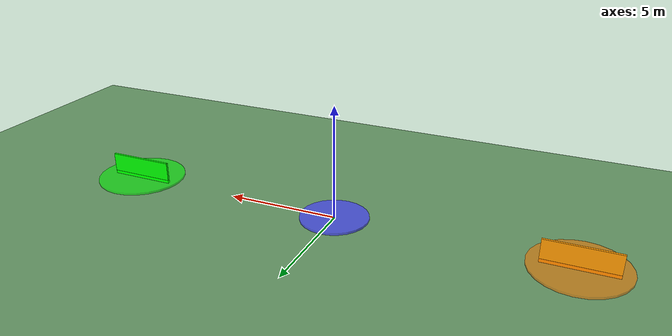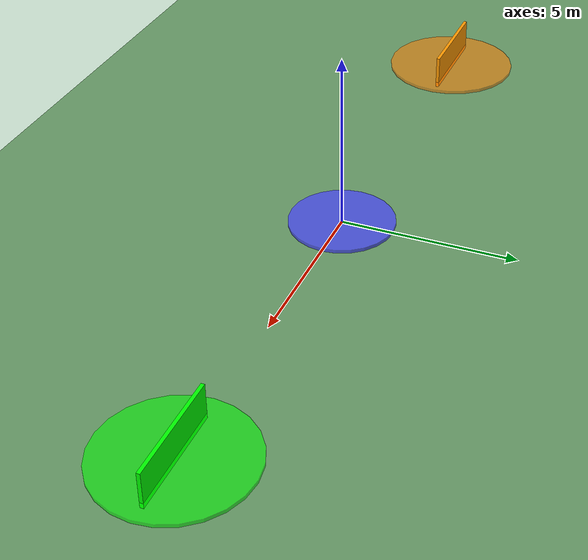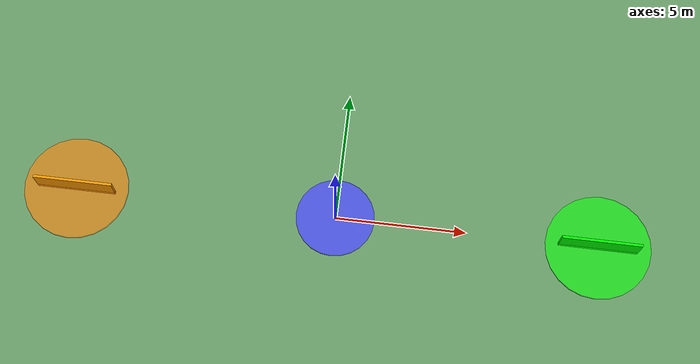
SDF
<?xml version="1.0" ?>
<sdf version="1.6">
  <world name="sectors_world">

    <!-- Physics -->
    <physics type="ode">
      <max_step_size>0.001</max_step_size>
      <real_time_factor>1.0</real_time_factor>
      <real_time_update_rate>1000</real_time_update_rate>
    </physics>

    <!-- Scene -->
    <scene>
      <ambient>0.4 0.4 0.4 1</ambient>
      <background>0.7 0.7 0.7 1</background>
      <shadows>true</shadows>
    </scene>

    <!-- Sun -->
    <light type="directional" name="sun">
      <cast_shadows>true</cast_shadows>
      <pose>0 0 10 0 0 0</pose>
      <diffuse>0.8 0.8 0.8 1</diffuse>
      <specular>0.2 0.2 0.2 1</specular>
      <attenuation>
        <range>1000</range>
        <constant>0.9</constant>
        <linear>0.01</linear>
        <quadratic>0.001</quadratic>
      </attenuation>
      <direction>-0.5 0.1 -0.9</direction>
    </light>

    <!-- Ground Plane -->
    <model name="ground_plane">
      <static>true</static>
      <link name="link">
        <collision name="collision">
          <geometry>
            <plane>
              <normal>0 0 1</normal>
              <size>100 100</size>
            </plane>
          </geometry>
        </collision>
        <visual name="visual">
          <geometry>
            <plane>
              <normal>0 0 1</normal>
              <size>100 100</size>
            </plane>
          </geometry>
          <material>
            <ambient>0.3 0.5 0.3 1</ambient>
            <diffuse>0.4 0.6 0.4 1</diffuse>
            <specular>0 0 0 0</specular>
          </material>
        </visual>
      </link>
    </model>

    <!-- Sector A Marker (Green - Low Risk) -->
    <model name="sector_a_marker">
      <static>true</static>
      <pose>10 0 0.1 0 0 0</pose>
      <link name="link">
        <visual name="visual">
          <geometry>
            <cylinder>
              <radius>2.0</radius>
              <length>0.1</length>
            </cylinder>
          </geometry>
          <material>
            <ambient>0 1 0 0.6</ambient>
            <diffuse>0 1 0 0.6</diffuse>
            <specular>0.1 0.1 0.1 1</specular>
          </material>
        </visual>
      </link>
    </model>

    <!-- Sector A Label -->
    <model name="sector_a_label">
      <static>true</static>
      <pose>10 0 0.5 0 0 0</pose>
      <link name="link">
        <visual name="visual">
          <geometry>
            <box>
              <size>3 0.1 1</size>
            </box>
          </geometry>
          <material>
            <ambient>0 0.8 0 1</ambient>
            <diffuse>0 1 0 1</diffuse>
          </material>
        </visual>
      </link>
    </model>

    <!-- Sector B Marker (Orange - Higher Risk) -->
    <model name="sector_b_marker">
      <static>true</static>
      <pose>-10 0 0.1 0 0 0</pose>
      <link name="link">
        <visual name="visual">
          <geometry>
            <cylinder>
              <radius>2.0</radius>
              <length>0.1</length>
            </cylinder>
          </geometry>
          <material>
            <ambient>1 0.5 0 0.6</ambient>
            <diffuse>1 0.5 0 0.6</diffuse>
            <specular>0.1 0.1 0.1 1</specular>
          </material>
        </visual>
      </link>
    </model>

    <!-- Sector B Label -->
    <model name="sector_b_label">
      <static>true</static>
      <pose>-10 0 0.5 0 0 0</pose>
      <link name="link">
        <visual name="visual">
          <geometry>
            <box>
              <size>3 0.1 1</size>
            </box>
          </geometry>
          <material>
            <ambient>1 0.5 0 1</ambient>
            <diffuse>1 0.6 0 1</diffuse>
          </material>
        </visual>
      </link>
    </model>

    <!-- Base/Home Marker (Blue) -->
    <model name="base_marker">
      <static>true</static>
      <pose>0 0 0.05 0 0 0</pose>
      <link name="link">
        <visual name="visual">
          <geometry>
            <cylinder>
              <radius>1.5</radius>
              <length>0.1</length>
            </cylinder>
          </geometry>
          <material>
            <ambient>0.2 0.2 1 0.8</ambient>
            <diffuse>0.3 0.3 1 0.8</diffuse>
            <specular>0.1 0.1 0.1 1</specular>
          </material>
        </visual>
      </link>
    </model>

    <!-- GUI settings -->
    <gui fullscreen='0'>
      <camera name='user_camera'>
        <pose>-5 -15 10 0 0.3 0.5</pose>
        <view_controller>orbit</view_controller>
      </camera>
    </gui>

  </world>
</sdf>
